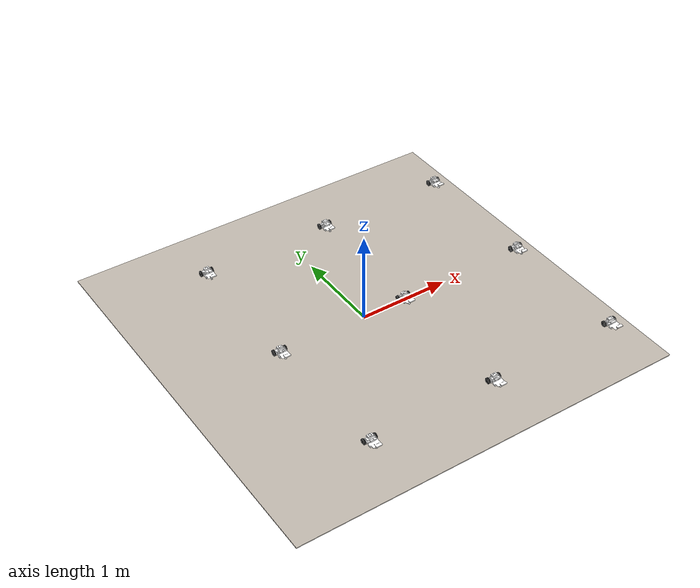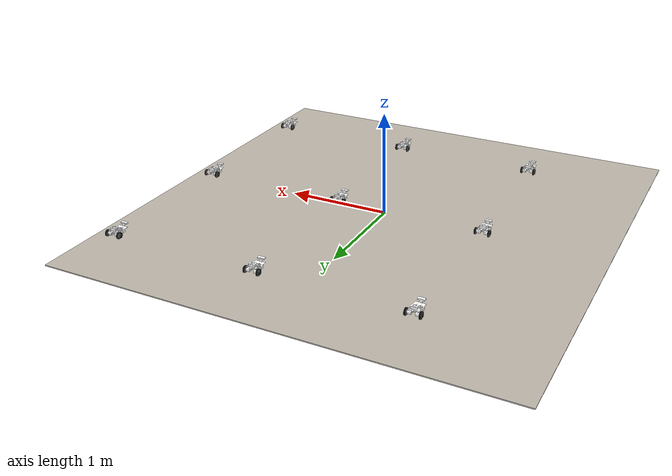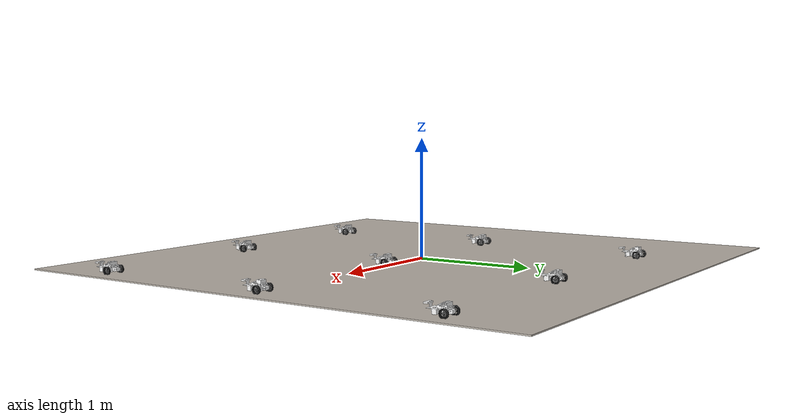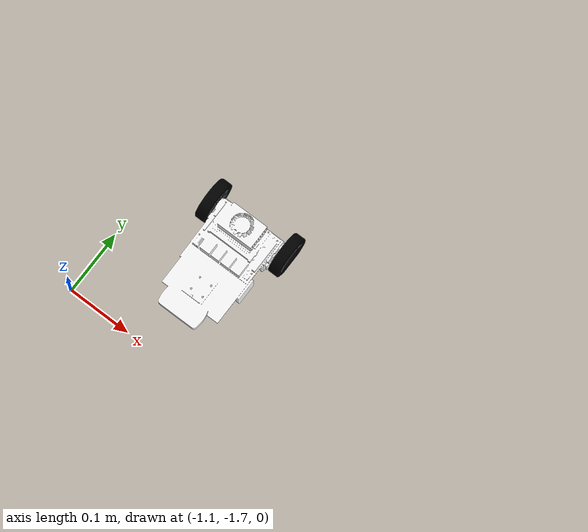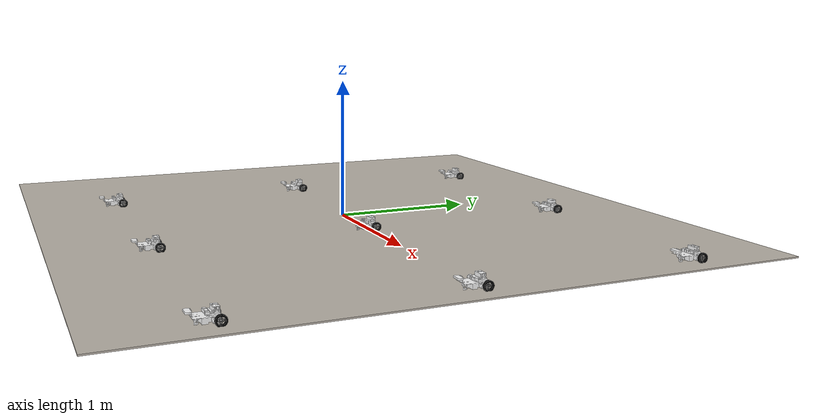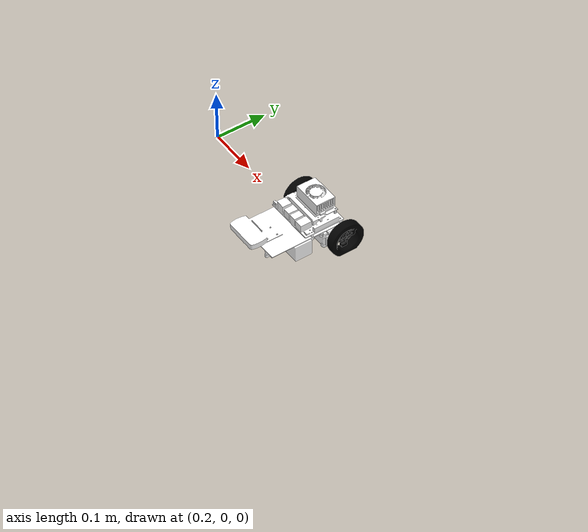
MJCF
<mujoco model="robot">
    <default>
        <joint limited="false" damping="0.01" armature="0.01" frictionloss="0.01" />
        <geom condim="4" contype="1" conaffinity="15" friction="0.9 0.2 0.2" solref="0.001 2" />
    </default>

    <compiler angle="radian" meshdir="../meshes/line_follower_robot" eulerseq="zyx"
        autolimits="true" />

    <asset>
        <texture name="texplane" type="2d" builtin="checker" rgb1=".0 .0 .0" rgb2=".8 .8 .8"
            width="100"
            height="100" />
        <material name="matplane" reflectance="0." texture="texplane" texrepeat="1 1"
            texuniform="true" />
        <material name="default_material" rgba="0.7 0.7 0.7 1" />
        <mesh name="base.stl" file="base.stl" />
        <mesh name="wheel.stl" file="wheel.stl" />

        <!-- Load the stage obj; explicitly defining the material to ensure texture loads -->
        <mesh name="stage" file="../stage/stage.obj" />
        <texture name="stage_tex" type="2d" file="../meshes/stage/stage.png" />
        <material name="stage_mat" texture="stage_tex" specular="0.0" shininess="0.0" />
    </asset>

    <worldbody>
        <light directional="true" diffuse="0.4 0.4 0.4" specular="0.1 0.1 0.1" pos="0 0 5.0"
            dir="0 0 -1" castshadow="false" />
        <light directional="true" diffuse="0.6 0.6 0.6" specular="0.2 0.2 0.2" pos="0 0 4"
            dir="0 0 -1" />

        <body name="stage_body" pos="0 0 0.001" euler="0 0 1.570796">
            <geom name="stage_geom" type="mesh" mesh="stage" material="stage_mat" condim="3"
                conaffinity="15" />
        </body>

        <include file="robot_1.mujoco.xml" />
        <include file="robot_2.mujoco.xml" />
        <include file="robot_3.mujoco.xml" />
        <include file="robot_4.mujoco.xml" />
        <include file="robot_5.mujoco.xml" />
        <include file="robot_6.mujoco.xml" />
        <include file="robot_7.mujoco.xml" />
        <include file="robot_8.mujoco.xml" />
        <include file="robot_9.mujoco.xml" />

    </worldbody>

    <actuator>
        <velocity name="left_wheel_joint_ctrl_1" joint="left_wheel_joint_1" ctrlrange="-20 20"
            ctrllimited="true" />
        <velocity name="right_wheel_joint_ctrl_1" joint="right_wheel_joint_1" ctrlrange="-20 20"
            ctrllimited="true" />

        <velocity name="left_wheel_joint_ctrl_2" joint="left_wheel_joint_2" ctrlrange="-20 20"
            ctrllimited="true" />
        <velocity name="right_wheel_joint_ctrl_2" joint="right_wheel_joint_2" ctrlrange="-20 20"
            ctrllimited="true" />

        <velocity name="left_wheel_joint_ctrl_3" joint="left_wheel_joint_3" ctrlrange="-20 20"
            ctrllimited="true" />
        <velocity name="right_wheel_joint_ctrl_3" joint="right_wheel_joint_3" ctrlrange="-20 20"
            ctrllimited="true" />

        <velocity name="left_wheel_joint_ctrl_4" joint="left_wheel_joint_4" ctrlrange="-20 20"
            ctrllimited="true" />
        <velocity name="right_wheel_joint_ctrl_4" joint="right_wheel_joint_4" ctrlrange="-20 20"
            ctrllimited="true" />

        <velocity name="left_wheel_joint_ctrl_5" joint="left_wheel_joint_5" ctrlrange="-20 20"
            ctrllimited="true" />
        <velocity name="right_wheel_joint_ctrl_5" joint="right_wheel_joint_5" ctrlrange="-20 20"
            ctrllimited="true" />

        <velocity name="left_wheel_joint_ctrl_6" joint="left_wheel_joint_6" ctrlrange="-20 20"
            ctrllimited="true" />
        <velocity name="right_wheel_joint_ctrl_6" joint="right_wheel_joint_6" ctrlrange="-20 20"
            ctrllimited="true" />

        <velocity name="left_wheel_joint_ctrl_7" joint="left_wheel_joint_7" ctrlrange="-20 20"
            ctrllimited="true" />
        <velocity name="right_wheel_joint_ctrl_7" joint="right_wheel_joint_7" ctrlrange="-20 20"
            ctrllimited="true" />

        <velocity name="left_wheel_joint_ctrl_8" joint="left_wheel_joint_8" ctrlrange="-20 20"
            ctrllimited="true" />
        <velocity name="right_wheel_joint_ctrl_8" joint="right_wheel_joint_8" ctrlrange="-20 20"
            ctrllimited="true" />

        <velocity name="left_wheel_joint_ctrl_9" joint="left_wheel_joint_9" ctrlrange="-20 20"
            ctrllimited="true" />
        <velocity name="right_wheel_joint_ctrl_9" joint="right_wheel_joint_9" ctrlrange="-20 20"
            ctrllimited="true" />
    </actuator>

</mujoco>

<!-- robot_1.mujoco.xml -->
<mujoco model="robot">

    <body name="base_link_1" pos=" 0.5 0 0.052" euler=" -1.57078 0 0">
        <freejoint name="root_1" />
        <site name="root_site_1" pos="0 0 0" />
        <inertial pos="0 0 0" mass="0.7" diaginertia="0.003 0.003 0.006" />
        <geom name="base_link_stl_1" type="mesh" mesh="base.stl" rgba="1 1 1 1" />

        <body name="left_wheel_link_1" pos="-0.01875 0.065 -0.019">
            <joint name="left_wheel_joint_1" type="hinge" axis="0 1 0" />
            <inertial pos="0.0 -0.001 0.0" mass="0.036"
                diaginertia="1.4072e-05 2.6303e-05 1.4072e-05" />
            <geom name="left_wheel_link_stl_1" type="mesh" mesh="wheel.stl" rgba="0 0 0 1" />
        </body>

        <body name="right_wheel_link_1" pos="-0.01875 -0.065 -0.019" quat="0.0 0.0 0.0 1.0">
            <joint name="right_wheel_joint_1" type="hinge" axis="0 -1 0" />
            <inertial pos="0.0 -0.001 0.0" mass="0.036"
                diaginertia="1.4072e-05 2.6303e-05 1.4072e-05" />
            <geom name="right_wheel_link_stl_1" type="mesh" mesh="wheel.stl"
                rgba="0 0 0 1" />
        </body>
        <body name="caster_link_1" pos="0.093283 0 -0.047">
            <inertial pos="0 0 0" mass="0.001" diaginertia="4e-08 4e-08 4e-08" />
            <geom name="caster_geom_stl_1" type="sphere" size="0.005"
                friction="0.01 0.005 0.005" material="default_material" />
        </body>
        <body name="camera_link_1" pos="0.134 0 0.0225" euler="-1.5707 0 0">
            <camera name="line_camera_1" mode="fixed" pos="0 0 0" euler="0 0 0" fovy="60" />
        </body>
    </body>

</mujoco>

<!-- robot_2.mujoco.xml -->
<mujoco model="robot">

    <body name="base_link_2" pos=" 1.99 0 0.052" euler=" -1.57078 0 0">
        <freejoint name="root_2" />
        <site name="root_site_2" pos="0 0 0" />
        <inertial pos="0 0 0" mass="0.7" diaginertia="0.003 0.003 0.006" />
        <geom name="base_link_stl_2" type="mesh" mesh="base.stl" rgba="1 1 1 1" />

        <body name="left_wheel_link_2" pos="-0.01875 0.065 -0.019">
            <joint name="left_wheel_joint_2" type="hinge" axis="0 1 0" />
            <inertial pos="0.0 -0.001 0.0" mass="0.036"
                diaginertia="1.4072e-05 2.6303e-05 1.4072e-05" />
            <geom name="left_wheel_link_stl_2" type="mesh" mesh="wheel.stl" rgba="0 0 0 1" />
        </body>

        <body name="right_wheel_link_2" pos="-0.01875 -0.065 -0.019" quat="0.0 0.0 0.0 1.0">
            <joint name="right_wheel_joint_2" type="hinge" axis="0 -1 0" />
            <inertial pos="0.0 -0.001 0.0" mass="0.036"
                diaginertia="1.4072e-05 2.6303e-05 1.4072e-05" />
            <geom name="right_wheel_link_stl_2" type="mesh" mesh="wheel.stl"
                rgba="0 0 0 1" />
        </body>
        <body name="caster_link_2" pos="0.093283 0 -0.047">
            <inertial pos="0 0 0" mass="0.001" diaginertia="4e-08 4e-08 4e-08" />
            <geom name="caster_geom_stl_2" type="sphere" size="0.005"
                friction="0.01 0.005 0.005" material="default_material" />
        </body>
        <body name="camera_link_2" pos="0.134 0 0.0225" euler="-1.5707 0 0">
            <camera name="line_camera_2" mode="fixed" pos="0 0 0" euler="0 0 0" fovy="60" />
        </body>
    </body>

</mujoco>

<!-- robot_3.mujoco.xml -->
<mujoco model="robot">

    <body name="base_link_3" pos=" 1.99 1.5 0.052" euler=" -1.57078 0 0">
        <freejoint name="root_3" />
        <site name="root_site_3" pos="0 0 0" />
        <inertial pos="0 0 0" mass="0.7" diaginertia="0.003 0.003 0.006" />
        <geom name="base_link_stl_3" type="mesh" mesh="base.stl" rgba="1 1 1 1" />

        <body name="left_wheel_link_3" pos="-0.01875 0.065 -0.019">
            <joint name="left_wheel_joint_3" type="hinge" axis="0 1 0" />
            <inertial pos="0.0 -0.001 0.0" mass="0.036"
                diaginertia="1.4072e-05 2.6303e-05 1.4072e-05" />
            <geom name="left_wheel_link_stl_3" type="mesh" mesh="wheel.stl" rgba="0 0 0 1" />
        </body>

        <body name="right_wheel_link_3" pos="-0.01875 -0.065 -0.019" quat="0.0 0.0 0.0 1.0">
            <joint name="right_wheel_joint_3" type="hinge" axis="0 -1 0" />
            <inertial pos="0.0 -0.001 0.0" mass="0.036"
                diaginertia="1.4072e-05 2.6303e-05 1.4072e-05" />
            <geom name="right_wheel_link_stl_3" type="mesh" mesh="wheel.stl"
                rgba="0 0 0 1" />
        </body>
        <body name="caster_link_3" pos="0.093283 0 -0.047">
            <inertial pos="0 0 0" mass="0.001" diaginertia="4e-08 4e-08 4e-08" />
            <geom name="caster_geom_stl_3" type="sphere" size="0.005"
                friction="0.01 0.005 0.005" material="default_material" />
        </body>
        <body name="camera_link_3" pos="0.134 0 0.0225" euler="-1.5707 0 0">
            <camera name="line_camera_3" mode="fixed" pos="0 0 0" euler="0 0 0" fovy="60" />
        </body>
    </body>

</mujoco>

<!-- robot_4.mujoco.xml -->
<mujoco model="robot">

    <body name="base_link_4" pos=" 1.99 -1.5 0.052" euler=" -1.57078 0 0">
        <freejoint name="root_4" />
        <site name="root_site_4" pos="0 0 0" />
        <inertial pos="0 0 0" mass="0.7" diaginertia="0.003 0.003 0.006" />
        <geom name="base_link_stl_4" type="mesh" mesh="base.stl" rgba="1 1 1 1" />

        <body name="left_wheel_link_4" pos="-0.01875 0.065 -0.019">
            <joint name="left_wheel_joint_4" type="hinge" axis="0 1 0" />
            <inertial pos="0.0 -0.001 0.0" mass="0.036"
                diaginertia="1.4072e-05 2.6303e-05 1.4072e-05" />
            <geom name="left_wheel_link_stl_4" type="mesh" mesh="wheel.stl" rgba="0 0 0 1" />
        </body>

        <body name="right_wheel_link_4" pos="-0.01875 -0.065 -0.019" quat="0.0 0.0 0.0 1.0">
            <joint name="right_wheel_joint_4" type="hinge" axis="0 -1 0" />
            <inertial pos="0.0 -0.001 0.0" mass="0.036"
                diaginertia="1.4072e-05 2.6303e-05 1.4072e-05" />
            <geom name="right_wheel_link_stl_4" type="mesh" mesh="wheel.stl"
                rgba="0 0 0 1" />
        </body>
        <body name="caster_link_4" pos="0.093283 0 -0.047">
            <inertial pos="0 0 0" mass="0.001" diaginertia="4e-08 4e-08 4e-08" />
            <geom name="caster_geom_stl_4" type="sphere" size="0.005"
                friction="0.01 0.005 0.005" material="default_material" />
        </body>
        <body name="camera_link_4" pos="0.134 0 0.0225" euler="-1.5707 0 0">
            <camera name="line_camera_4" mode="fixed" pos="0 0 0" euler="0 0 0" fovy="60" />
        </body>
    </body>

</mujoco>

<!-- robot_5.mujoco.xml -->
<mujoco model="robot">

    <body name="base_link_5" pos="0.5 -1.5 0.052" euler=" -1.57078 0 0">
        <freejoint name="root_5" />
        <site name="root_site_5" pos="0 0 0" />
        <inertial pos="0 0 0" mass="0.7" diaginertia="0.003 0.003 0.006" />
        <geom name="base_link_stl_5" type="mesh" mesh="base.stl" rgba="1 1 1 1" />

        <body name="left_wheel_link_5" pos="-0.01875 0.065 -0.019">
            <joint name="left_wheel_joint_5" type="hinge" axis="0 1 0" />
            <inertial pos="0.0 -0.001 0.0" mass="0.036"
                diaginertia="1.4072e-05 2.6303e-05 1.4072e-05" />
            <geom name="left_wheel_link_stl_5" type="mesh" mesh="wheel.stl" rgba="0 0 0 1" />
        </body>

        <body name="right_wheel_link_5" pos="-0.01875 -0.065 -0.019" quat="0.0 0.0 0.0 1.0">
            <joint name="right_wheel_joint_5" type="hinge" axis="0 -1 0" />
            <inertial pos="0.0 -0.001 0.0" mass="0.036"
                diaginertia="1.4072e-05 2.6303e-05 1.4072e-05" />
            <geom name="right_wheel_link_stl_5" type="mesh" mesh="wheel.stl"
                rgba="0 0 0 1" />
        </body>
        <body name="caster_link_5" pos="0.093283 0 -0.047">
            <inertial pos="0 0 0" mass="0.001" diaginertia="4e-08 4e-08 4e-08" />
            <geom name="caster_geom_stl_5" type="sphere" size="0.005"
                friction="0.01 0.005 0.005" material="default_material" />
        </body>
        <body name="camera_link_5" pos="0.134 0 0.0225" euler="-1.5707 0 0">
            <camera name="line_camera_5" mode="fixed" pos="0 0 0" euler="0 0 0" fovy="60" />
        </body>
    </body>

</mujoco>

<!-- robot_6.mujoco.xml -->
<mujoco model="robot">

    <body name="base_link_6" pos=" 0.5 1.5 0.052" euler=" -1.57078 0 0">
        <freejoint name="root_6" />
        <site name="root_site_6" pos="0 0 0" />
        <inertial pos="0 0 0" mass="0.7" diaginertia="0.003 0.003 0.006" />
        <geom name="base_link_stl_6" type="mesh" mesh="base.stl" rgba="1 1 1 1" />

        <body name="left_wheel_link_6" pos="-0.01875 0.065 -0.019">
            <joint name="left_wheel_joint_6" type="hinge" axis="0 1 0" />
            <inertial pos="0.0 -0.001 0.0" mass="0.036"
                diaginertia="1.4072e-05 2.6303e-05 1.4072e-05" />
            <geom name="left_wheel_link_stl_6" type="mesh" mesh="wheel.stl" rgba="0 0 0 1" />
        </body>

        <body name="right_wheel_link_6" pos="-0.01875 -0.065 -0.019" quat="0.0 0.0 0.0 1.0">
            <joint name="right_wheel_joint_6" type="hinge" axis="0 -1 0" />
            <inertial pos="0.0 -0.001 0.0" mass="0.036"
                diaginertia="1.4072e-05 2.6303e-05 1.4072e-05" />
            <geom name="right_wheel_link_stl_6" type="mesh" mesh="wheel.stl"
                rgba="0 0 0 1" />
        </body>
        <body name="caster_link_6" pos="0.093283 0 -0.047">
            <inertial pos="0 0 0" mass="0.001" diaginertia="4e-08 4e-08 4e-08" />
            <geom name="caster_geom_stl_6" type="sphere" size="0.005"
                friction="0.01 0.005 0.005" material="default_material" />
        </body>
        <body name="camera_link_6" pos="0.134 0 0.0225" euler="-1.5707 0 0">
            <camera name="line_camera_6" mode="fixed" pos="0 0 0" euler="0 0 0" fovy="60" />
        </body>
    </body>

</mujoco>

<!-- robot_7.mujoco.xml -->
<mujoco model="robot">

    <body name="base_link_7" pos=" -0.99 1.5 0.052" euler=" -1.57078 0 0">
        <freejoint name="root_7" />
        <site name="root_site_7" pos="0 0 0" />
        <inertial pos="0 0 0" mass="0.7" diaginertia="0.003 0.003 0.006" />
        <geom name="base_link_stl_7" type="mesh" mesh="base.stl" rgba="1 1 1 1" />

        <body name="left_wheel_link_7" pos="-0.01875 0.065 -0.019">
            <joint name="left_wheel_joint_7" type="hinge" axis="0 1 0" />
            <inertial pos="0.0 -0.001 0.0" mass="0.036"
                diaginertia="1.4072e-05 2.6303e-05 1.4072e-05" />
            <geom name="left_wheel_link_stl_7" type="mesh" mesh="wheel.stl" rgba="0 0 0 1" />
        </body>

        <body name="right_wheel_link_7" pos="-0.01875 -0.065 -0.019" quat="0.0 0.0 0.0 1.0">
            <joint name="right_wheel_joint_7" type="hinge" axis="0 -1 0" />
            <inertial pos="0.0 -0.001 0.0" mass="0.036"
                diaginertia="1.4072e-05 2.6303e-05 1.4072e-05" />
            <geom name="right_wheel_link_stl_7" type="mesh" mesh="wheel.stl"
                rgba="0 0 0 1" />
        </body>
        <body name="caster_link_7" pos="0.093283 0 -0.047">
            <inertial pos="0 0 0" mass="0.001" diaginertia="4e-08 4e-08 4e-08" />
            <geom name="caster_geom_stl_7" type="sphere" size="0.005"
                friction="0.01 0.005 0.005" material="default_material" />
        </body>
        <body name="camera_link_7" pos="0.134 0 0.0225" euler="-1.5707 0 0">
            <camera name="line_camera_7" mode="fixed" pos="0 0 0" euler="0 0 0" fovy="60" />
        </body>
    </body>

</mujoco>

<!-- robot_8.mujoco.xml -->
<mujoco model="robot">

    <body name="base_link_8" pos=" -0.95 -1.5 0.052" euler=" -1.57078 0 0">
        <freejoint name="root_8" />
        <site name="root_site_8" pos="0 0 0" />
        <inertial pos="0 0 0" mass="0.7" diaginertia="0.003 0.003 0.006" />
        <geom name="base_link_stl_8" type="mesh" mesh="base.stl" rgba="1 1 1 1" />

        <body name="left_wheel_link_8" pos="-0.01875 0.065 -0.019">
            <joint name="left_wheel_joint_8" type="hinge" axis="0 1 0" />
            <inertial pos="0.0 -0.001 0.0" mass="0.036"
                diaginertia="1.4072e-05 2.6303e-05 1.4072e-05" />
            <geom name="left_wheel_link_stl_8" type="mesh" mesh="wheel.stl" rgba="0 0 0 1" />
        </body>

        <body name="right_wheel_link_8" pos="-0.01875 -0.065 -0.019" quat="0.0 0.0 0.0 1.0">
            <joint name="right_wheel_joint_8" type="hinge" axis="0 -1 0" />
            <inertial pos="0.0 -0.001 0.0" mass="0.036"
                diaginertia="1.4072e-05 2.6303e-05 1.4072e-05" />
            <geom name="right_wheel_link_stl_8" type="mesh" mesh="wheel.stl"
                rgba="0 0 0 1" />
        </body>
        <body name="caster_link_8" pos="0.093283 0 -0.047">
            <inertial pos="0 0 0" mass="0.001" diaginertia="4e-08 4e-08 4e-08" />
            <geom name="caster_geom_stl_8" type="sphere" size="0.005"
                friction="0.01 0.005 0.005" material="default_material" />
        </body>
        <body name="camera_link_8" pos="0.134 0 0.0225" euler="-1.5707 0 0">
            <camera name="line_camera_8" mode="fixed" pos="0 0 0" euler="0 0 0" fovy="60" />
        </body>
    </body>

</mujoco>

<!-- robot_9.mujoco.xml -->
<mujoco model="robot">

    <body name="base_link_9" pos=" -1.0 0 0.052" euler=" -1.57078 0 0">
        <freejoint name="root_9" />
        <site name="root_site_9" pos="0 0 0" />
        <inertial pos="0 0 0" mass="0.7" diaginertia="0.003 0.003 0.006" />
        <geom name="base_link_stl_9" type="mesh" mesh="base.stl" rgba="1 1 1 1" />

        <body name="left_wheel_link_9" pos="-0.01875 0.065 -0.019">
            <joint name="left_wheel_joint_9" type="hinge" axis="0 1 0" />
            <inertial pos="0.0 -0.001 0.0" mass="0.036"
                diaginertia="1.4072e-05 2.6303e-05 1.4072e-05" />
            <geom name="left_wheel_link_stl_9" type="mesh" mesh="wheel.stl" rgba="0 0 0 1" />
        </body>

        <body name="right_wheel_link_9" pos="-0.01875 -0.065 -0.019" quat="0.0 0.0 0.0 1.0">
            <joint name="right_wheel_joint_9" type="hinge" axis="0 -1 0" />
            <inertial pos="0.0 -0.001 0.0" mass="0.036"
                diaginertia="1.4072e-05 2.6303e-05 1.4072e-05" />
            <geom name="right_wheel_link_stl_9" type="mesh" mesh="wheel.stl"
                rgba="0 0 0 1" />
        </body>
        <body name="caster_link_9" pos="0.093283 0 -0.047">
            <inertial pos="0 0 0" mass="0.001" diaginertia="4e-08 4e-08 4e-08" />
            <geom name="caster_geom_stl_9" type="sphere" size="0.005"
                friction="0.01 0.005 0.005" material="default_material" />
        </body>
        <body name="camera_link_9" pos="0.134 0 0.0225" euler="-1.5707 0 0">
            <camera name="line_camera_9" mode="fixed" pos="0 0 0" euler="0 0 0" fovy="60" />
        </body>
    </body>

</mujoco>
